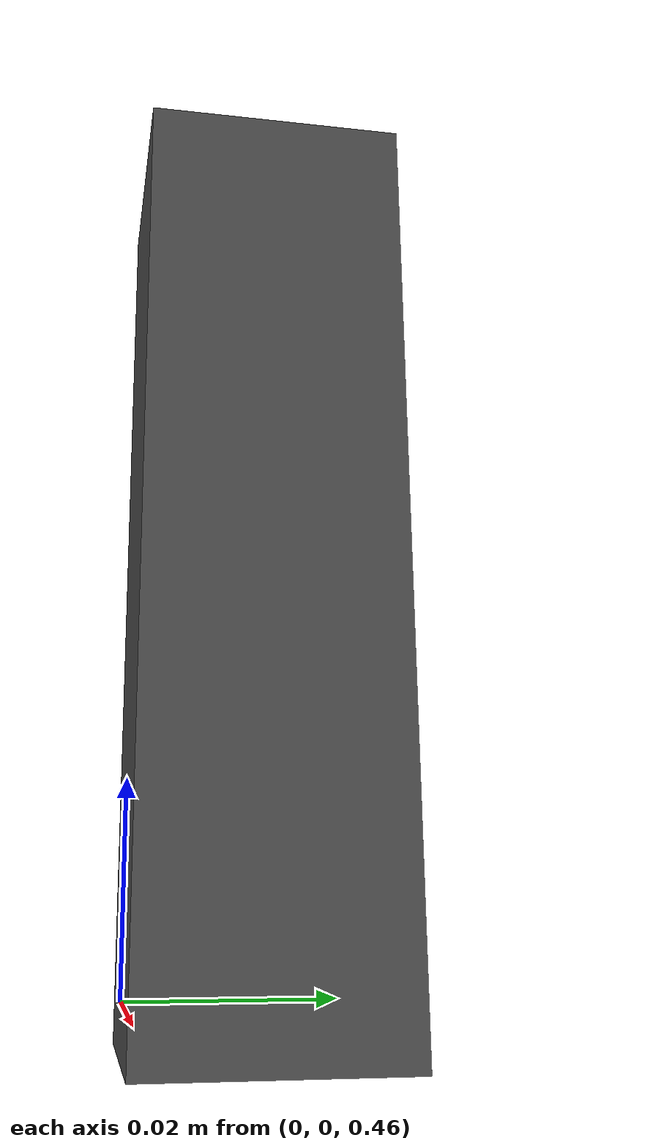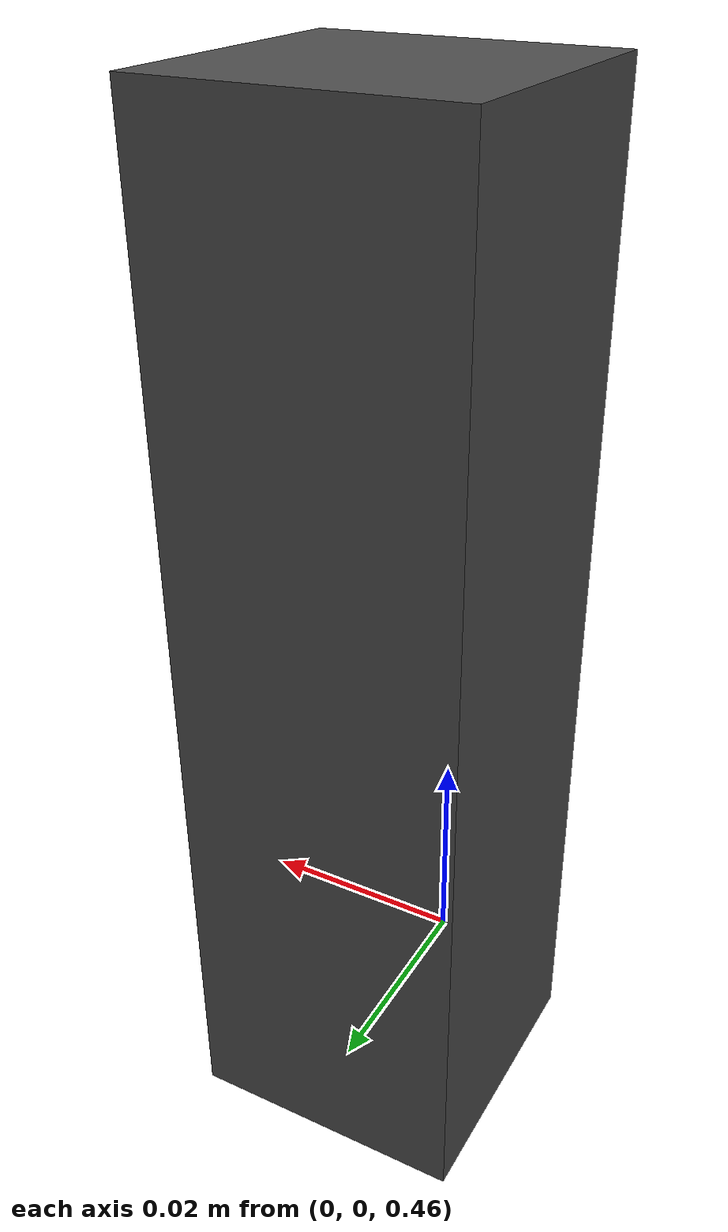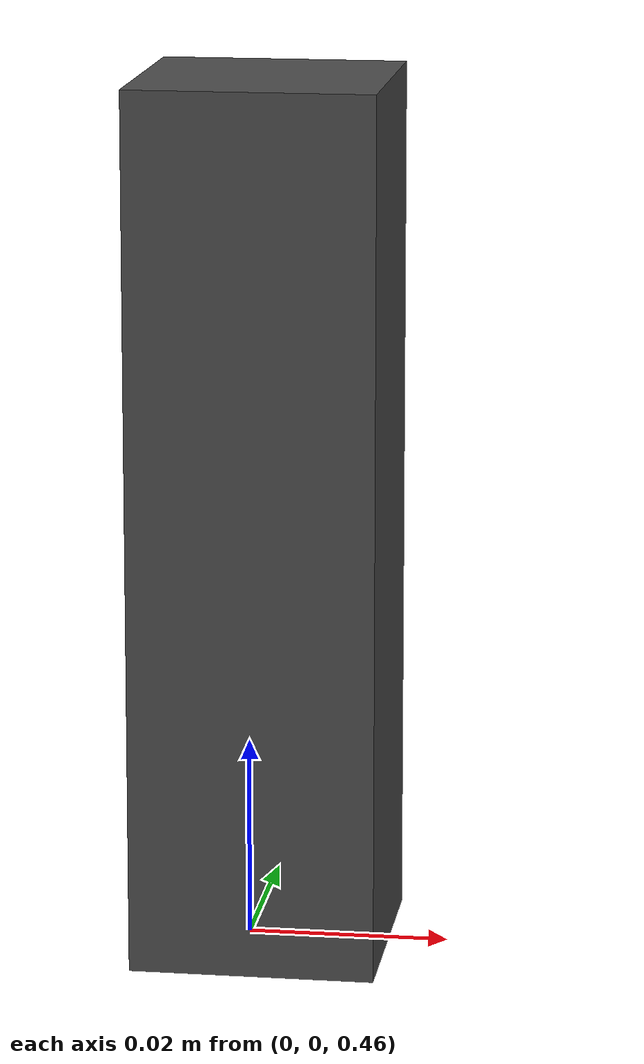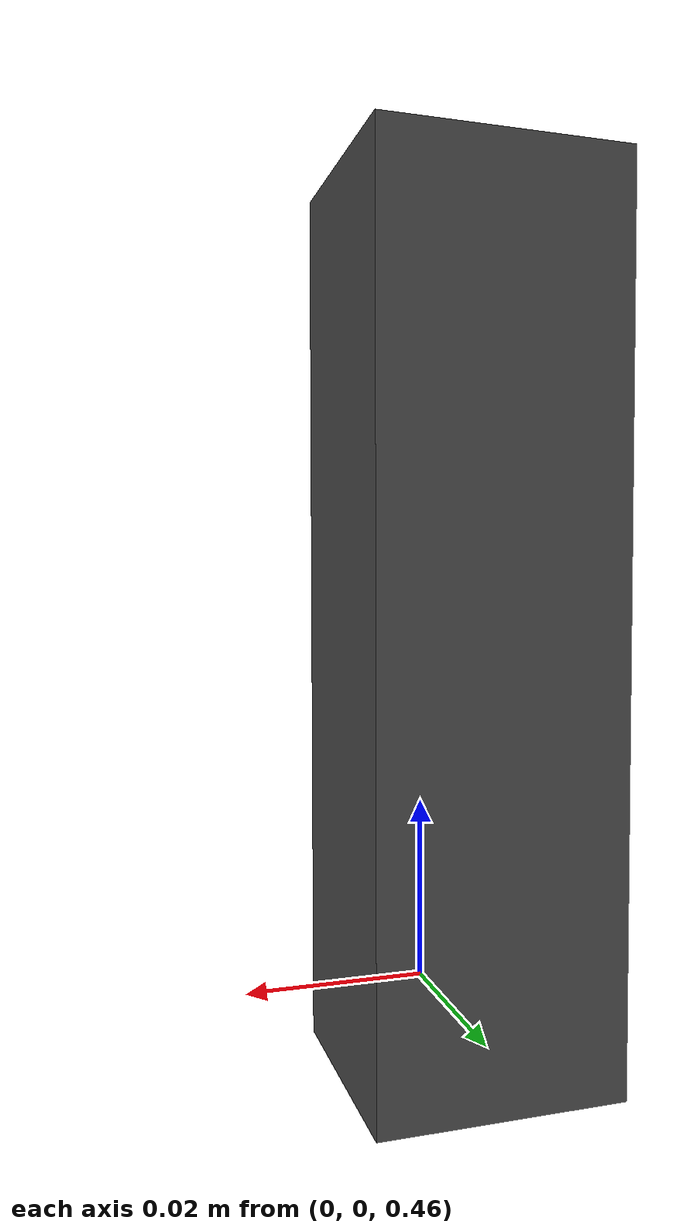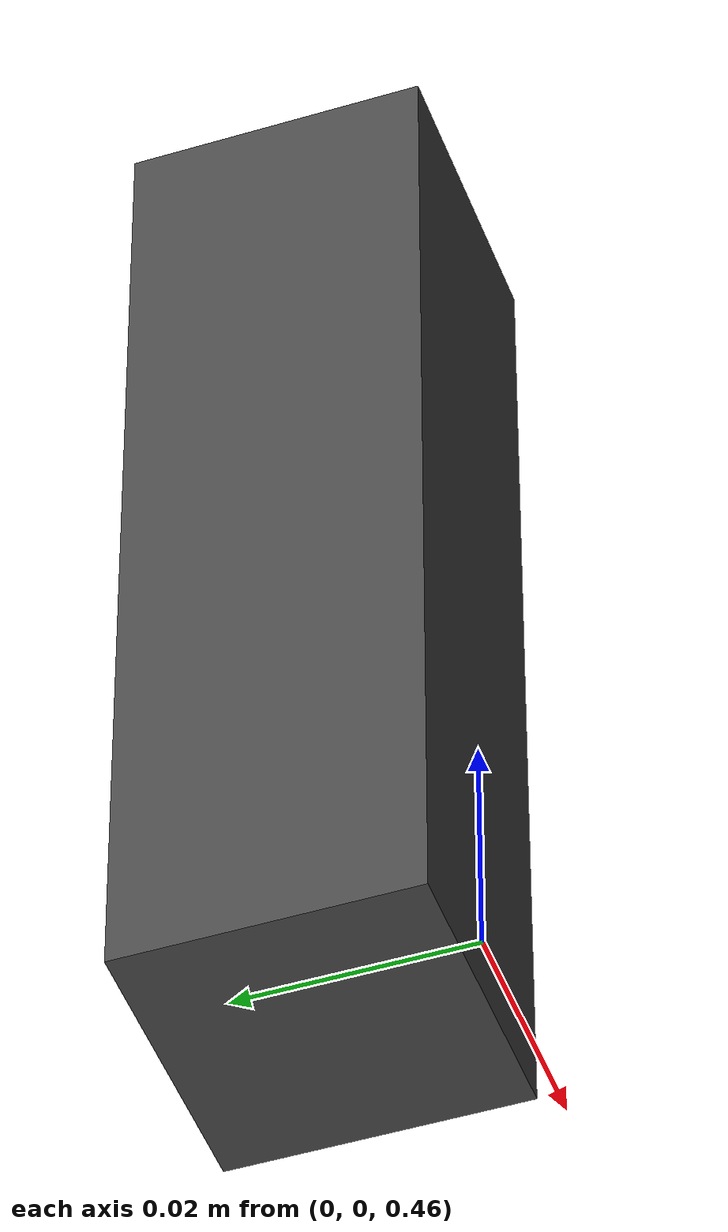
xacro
<?xml version="1.0"?>
<!--
  Standalone URDF for D455-like RGB-D Simulator
  用于单相机 smoke test
-->
<robot name="d455_like_test" xmlns:xacro="http://ros.org/wiki/xacro">
  <link name="base_link"/>

  <!-- Include D455-like macro -->
  <xacro:include filename="$(find realsense_gazebo_description)/urdf/_d455_like.urdf.xacro"/>

  <xacro:sensor_d455_like parent="base_link" name="test_camera" topics_ns="test_camera"
      color_width="640" color_height="480" color_fps="10"
      depth_width="640" depth_height="480" depth_fps="10"
      enable_pointcloud="false"
      visualize="false">
    <origin xyz="0.0 0.0 0.5" rpy="0.0 0.0 0.0"/>
  </xacro:sensor_d455_like>

  <!-- Dummy links to match plugin's frame_id convention:
       plugin publishes frame_id = prefix + "color"/"depth"/...
       These links allow TF lookups to succeed -->
  <joint name="test_cameracolor_joint" type="fixed">
    <parent link="test_camera_color_optical_frame"/>
    <child link="test_cameracolor"/>
    <origin xyz="0 0 0" rpy="0 0 0"/>
  </joint>
  <link name="test_cameracolor"/>

  <joint name="test_cameradepth_joint" type="fixed">
    <parent link="test_camera_depth_optical_frame"/>
    <child link="test_cameradepth"/>
    <origin xyz="0 0 0" rpy="0 0 0"/>
  </joint>
  <link name="test_cameradepth"/>

</robot>

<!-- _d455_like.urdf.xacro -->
<!--
  D455-like RGB-D Simulator URDF xacro
  参数化的简化 RGB-D 相机模型。不是真实 D455 物理模型。
  License: Apache 2.0
-->
<robot name="sensor_d455_like" xmlns:xacro="http://ros.org/wiki/xacro">

  <xacro:include filename="$(find realsense_gazebo_description)/urdf/_d455_like.gazebo.xacro"/>

  <xacro:macro name="sensor_d455_like" params="
      parent
      name:=camera
      topics_ns:=camera

      color_width:=640
      color_height:=480
      color_fps:=10
      color_hfov_deg:=69.4
      color_noise_mean:=0.0
      color_noise_stddev:=0.007

      depth_width:=640
      depth_height:=480
      depth_fps:=10
      depth_hfov_deg:=69.4
      depth_near:=0.15
      depth_far:=10.0
      depth_noise_mean:=0.0
      depth_noise_stddev:=0.005

      infra_width:=320
      infra_height:=240
      infra_fps:=10

      align_depth:=false
      enable_pointcloud:=false
      visualize:=false
      *origin
  ">
    <xacro:property name="M_PI" value="3.1415926535897931"/>

    <!-- Camera body dimensions (approximate) -->
    <xacro:property name="cam_body_width" value="0.025"/>
    <xacro:property name="cam_body_height" value="0.025"/>
    <xacro:property name="cam_body_depth" value="0.090"/>

    <material name="${name}_gray">
      <color rgba="0.3 0.3 0.3 1"/>
    </material>

    <!-- Mount joint to parent -->
    <joint name="${name}_mount_joint" type="fixed">
      <xacro:insert_block name="origin"/>
      <parent link="${parent}"/>
      <child link="${name}_link"/>
    </joint>

    <!-- Camera body link -->
    <link name="${name}_link">
      <inertial>
        <mass value="0.05"/>
        <inertia ixx="0.0001" ixy="0.0" ixz="0.0" iyy="0.0001" iyz="0.0" izz="0.0001"/>
        <origin xyz="0 0 0" rpy="0 0 0"/>
      </inertial>
      <visual>
        <origin xyz="0 ${cam_body_height/2} 0" rpy="0 0 0"/>
        <geometry>
          <box size="${cam_body_width} ${cam_body_height} ${cam_body_depth}"/>
        </geometry>
        <material name="${name}_gray"/>
      </visual>
      <collision>
        <origin xyz="0 ${cam_body_height/2} 0" rpy="0 0 0"/>
        <geometry>
          <box size="${cam_body_width} ${cam_body_height} ${cam_body_depth}"/>
        </geometry>
      </collision>
    </link>

    <!-- Color camera frame (ROS convention: +Z forward) -->
    <joint name="${name}_color_joint" type="fixed">
      <origin xyz="0 ${cam_body_height} ${cam_body_depth/2}" rpy="0 0 0"/>
      <parent link="${name}_link"/>
      <child link="${name}_color_frame"/>
    </joint>
    <link name="${name}_color_frame"/>

    <!-- Color optical frame (ROS convention: +X right, +Y down, +Z forward) -->
    <joint name="${name}_color_optical_joint" type="fixed">
      <origin xyz="0 0 0" rpy="${-M_PI/2} 0 ${-M_PI/2}"/>
      <parent link="${name}_color_frame"/>
      <child link="${name}_color_optical_frame"/>
    </joint>
    <link name="${name}_color_optical_frame"/>

    <!-- Depth camera frame (same physical location as color for D455-like) -->
    <joint name="${name}_depth_joint" type="fixed">
      <origin xyz="0 ${cam_body_height} ${cam_body_depth/2}" rpy="0 0 0"/>
      <parent link="${name}_link"/>
      <child link="${name}_depth_frame"/>
    </joint>
    <link name="${name}_depth_frame"/>

    <!-- Depth optical frame -->
    <joint name="${name}_depth_optical_joint" type="fixed">
      <origin xyz="0 0 0" rpy="${-M_PI/2} 0 ${-M_PI/2}"/>
      <parent link="${name}_depth_frame"/>
      <child link="${name}_depth_optical_frame"/>
    </joint>
    <link name="${name}_depth_optical_frame"/>

    <!-- IR1 optical frame (required by plugin) -->
    <joint name="${name}_ir1_optical_joint" type="fixed">
      <origin xyz="0 ${cam_body_height} ${cam_body_depth/2}" rpy="0 0 0"/>
      <parent link="${name}_link"/>
      <child link="${name}_ir1_optical_frame"/>
    </joint>
    <link name="${name}_ir1_optical_frame"/>

    <!-- IR2 optical frame (required by plugin) -->
    <joint name="${name}_ir2_optical_joint" type="fixed">
      <origin xyz="0 ${cam_body_height} ${cam_body_depth/2}" rpy="0 0 0"/>
      <parent link="${name}_link"/>
      <child link="${name}_ir2_optical_frame"/>
    </joint>
    <link name="${name}_ir2_optical_frame"/>

    <!-- Gazebo sensors and plugin -->
    <xacro:gazebo_d455_like
      reference_link="${name}_link"
      camera_name="${name}"
      topics_ns="${topics_ns}"

      depth_optical_frame="${name}_depth_optical_frame"
      color_optical_frame="${name}_color_optical_frame"
      infrared1_optical_frame="${name}_ir1_optical_frame"
      infrared2_optical_frame="${name}_ir2_optical_frame"

      color_width="${color_width}"
      color_height="${color_height}"
      color_fps="${color_fps}"
      color_hfov_deg="${color_hfov_deg}"
      color_noise_mean="${color_noise_mean}"
      color_noise_stddev="${color_noise_stddev}"

      depth_width="${depth_width}"
      depth_height="${depth_height}"
      depth_fps="${depth_fps}"
      depth_hfov_deg="${depth_hfov_deg}"
      depth_near="${depth_near}"
      depth_far="${depth_far}"
      depth_noise_mean="${depth_noise_mean}"
      depth_noise_stddev="${depth_noise_stddev}"

      infra_width="${infra_width}"
      infra_height="${infra_height}"
      infra_fps="${infra_fps}"

      align_depth="${align_depth}"
      enable_pointcloud="${enable_pointcloud}"
      visualize="${visualize}"
    />

  </xacro:macro>
</robot>
